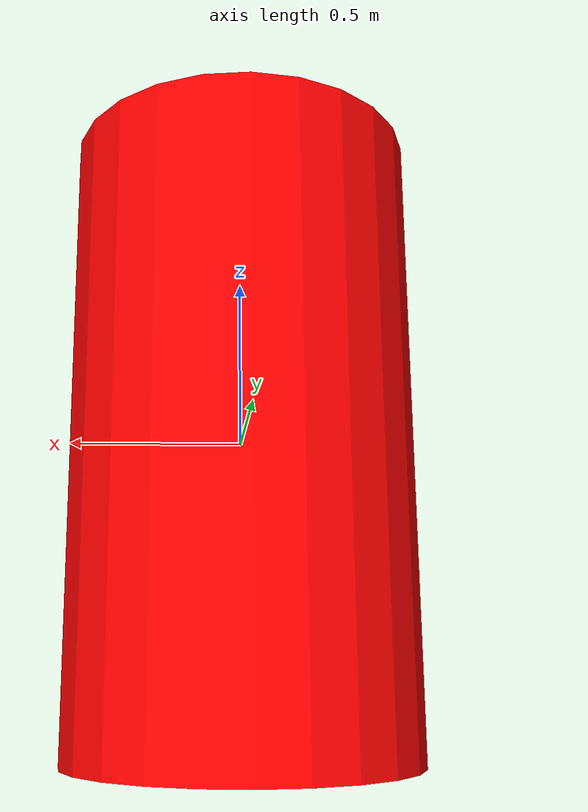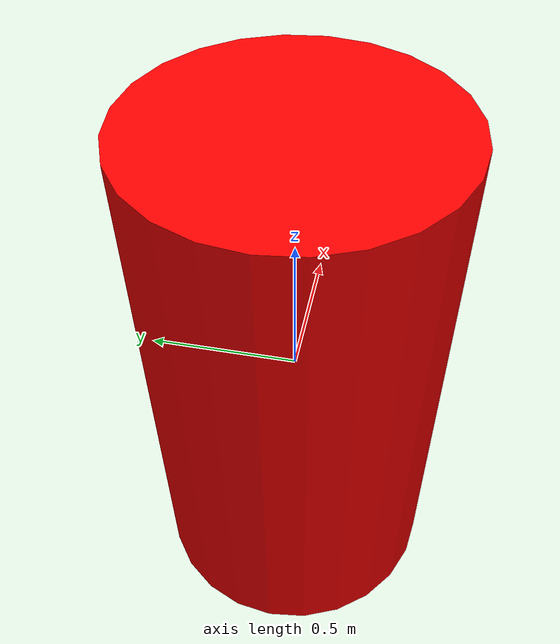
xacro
<?xml version="1.0"?>
<robot name="planar_cylinder">
  <link name="base_link">
    <visual>
      <geometry>
        <!-- Radius 0.5m (width 1.0m), Length 1.8m -->
        <cylinder radius="0.5" length="1.8"/>
      </geometry>
      <material name="red">
        <color rgba="1.0 0.0 0.0 1.0"/>
      </material>
    </visual>

    <collision>
      <geometry>
        <cylinder radius="0.5" length="1.8"/>
      </geometry>
    </collision>

    <inertial>
      <!-- Mass 1000kg requires much higher inertia for stability -->
      <mass value="1000.0"/>
      <inertia ixx="332.5" ixy="0" ixz="0" iyy="332.5" iyz="0" izz="125.0"/>
    </inertial>
  </link>

  <gazebo reference="base_link">
    <material>Gazebo/Red</material>
    <mu1>0.0</mu1>
    <mu2>0.0</mu2>
    <kp>1000000.0</kp>
    <kd>1.0</kd>
  </gazebo>

  <gazebo>
    <plugin name="object_controller" filename="libgazebo_ros_planar_move.so">
      <commandTopic>box_cmd_vel</commandTopic>
      <odometryTopic>box_odom</odometryTopic>
      <odometryFrame>box_odom</odometryFrame>
      <odometryRate>20.0</odometryRate>
      <robotBaseFrame>box_base_link</robotBaseFrame>
    </plugin>
  </gazebo>
</robot>
